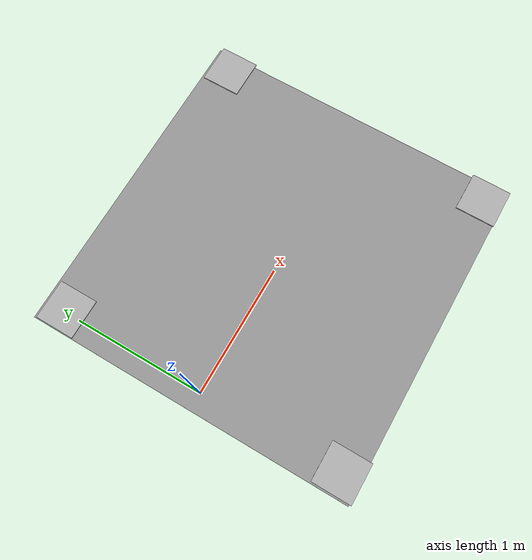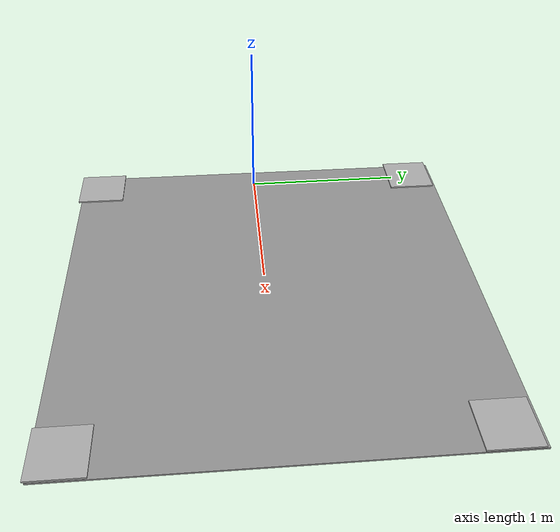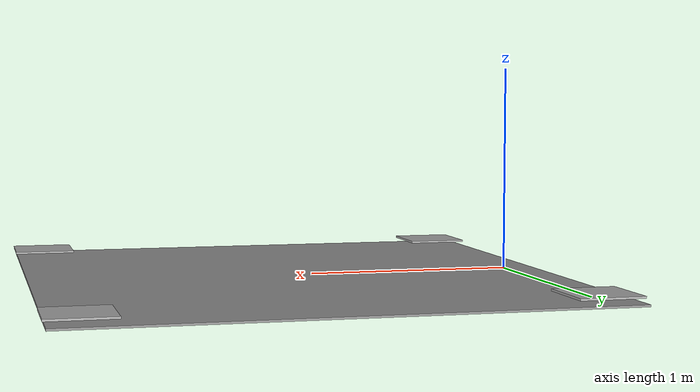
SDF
<?xml version='1.0'?>
<sdf version='1.6'>
  <model name='vr_env'>
    <link name='link'>
      <pose frame=''>1.11662 0.039296 0 0 -0 0</pose>
      <inertial>
        <mass>1</mass>
        <inertia>
          <ixx>0.166667</ixx>
          <ixy>0</ixy>
          <ixz>0</ixz>
          <iyy>0.166667</iyy>
          <iyz>0</iyz>
          <izz>0.166667</izz>
        </inertia>
        <pose frame=''>0 0 0 0 -0 0</pose>
      </inertial>
      <self_collide>0</self_collide>
      <kinematic>0</kinematic>
      <gravity>1</gravity>
      <visual name='visual'>
        <geometry>
          <box>
            <size>2.5 2.5 0.01</size>
          </box>
        </geometry>
        <material>
          <script>
            <name>Gazebo/Grey</name>
            <uri>file://media/materials/scripts/gazebo.material</uri>
          </script>
          <ambient>1 1 1 1</ambient>
          <diffuse>0.7 0.7 0.7 1</diffuse>
          <specular>0.01 0.01 0.01 1</specular>
          <emissive>0 0 0 1</emissive>
          <shader type='vertex'>
            <normal_map>__default__</normal_map>
          </shader>
        </material>
        <pose frame=''>0 0 0 0 -0 0</pose>
        <cast_shadows>1</cast_shadows>
        <transparency>0</transparency>
      </visual>
      <collision name='collision'>
        <laser_retro>0</laser_retro>
        <max_contacts>10</max_contacts>
        <pose frame=''>0 0 0 0 -0 0</pose>
        <geometry>
          <box>
            <size>2.5 2.5 0.01</size>
          </box>
        </geometry>
        <surface>
          <friction>
            <ode>
              <mu>1</mu>
              <mu2>1</mu2>
              <fdir1>0 0 0</fdir1>
              <slip1>0</slip1>
              <slip2>0</slip2>
            </ode>
            <torsional>
              <coefficient>1</coefficient>
              <patch_radius>0</patch_radius>
              <surface_radius>0</surface_radius>
              <use_patch_radius>1</use_patch_radius>
              <ode>
                <slip>0</slip>
              </ode>
            </torsional>
          </friction>
          <bounce>
            <restitution_coefficient>0</restitution_coefficient>
            <threshold>1e+06</threshold>
          </bounce>
          <contact>
            <collide_without_contact>0</collide_without_contact>
            <collide_without_contact_bitmask>1</collide_without_contact_bitmask>
            <collide_bitmask>1</collide_bitmask>
            <ode>
              <soft_cfm>0</soft_cfm>
              <soft_erp>0.2</soft_erp>
              <kp>1e+13</kp>
              <kd>1</kd>
              <max_vel>0.01</max_vel>
              <min_depth>0</min_depth>
            </ode>
            <bullet>
              <split_impulse>1</split_impulse>
              <split_impulse_penetration_threshold>-0.01</split_impulse_penetration_threshold>
              <soft_cfm>0</soft_cfm>
              <soft_erp>0.2</soft_erp>
              <kp>1e+13</kp>
              <kd>1</kd>
            </bullet>
          </contact>
        </surface>
      </collision>
    </link>
    <link name='link_tag1'>
      <pose frame=''>0.022967 1.11381 0.031996 0 -0 0</pose>
      <inertial>
        <mass>1</mass>
        <inertia>
          <ixx>0.166667</ixx>
          <ixy>0</ixy>
          <ixz>0</ixz>
          <iyy>0.166667</iyy>
          <iyz>0</iyz>
          <izz>0.166667</izz>
        </inertia>
        <pose frame=''>0 0 0 0 -0 0</pose>
      </inertial>
      <self_collide>0</self_collide>
      <kinematic>0</kinematic>
      <gravity>1</gravity>
      <visual name='visual'>
        <geometry>
          <box>
            <size>0.3 0.3 0.01</size>
          </box>
        </geometry>
        <material>
          <script>
            <name>vr_localization/tag1</name>
            <uri>file:///home/cm/Workspaces/VR_localization/src/vr_localization/gazebo/materials/tag1.material</uri>
          </script>
          <ambient>1 1 1 1</ambient>
          <diffuse>0.7 0.7 0.7 1</diffuse>
          <specular>0.01 0.01 0.01 1</specular>
          <emissive>0 0 0 1</emissive>
          <shader type='vertex'>
            <normal_map>__default__</normal_map>
          </shader>
        </material>
        <pose frame=''>0 0 0 0 -0 0</pose>
        <cast_shadows>1</cast_shadows>
        <transparency>0</transparency>
      </visual>
      <collision name='collision'>
        <laser_retro>0</laser_retro>
        <max_contacts>10</max_contacts>
        <pose frame=''>0 0 0 0 -0 0</pose>
        <geometry>
          <box>
            <size>0.3 0.3 0.01</size>
          </box>
        </geometry>
        <surface>
          <friction>
            <ode>
              <mu>1</mu>
              <mu2>1</mu2>
              <fdir1>0 0 0</fdir1>
              <slip1>0</slip1>
              <slip2>0</slip2>
            </ode>
            <torsional>
              <coefficient>1</coefficient>
              <patch_radius>0</patch_radius>
              <surface_radius>0</surface_radius>
              <use_patch_radius>1</use_patch_radius>
              <ode>
                <slip>0</slip>
              </ode>
            </torsional>
          </friction>
          <bounce>
            <restitution_coefficient>0</restitution_coefficient>
            <threshold>1e+06</threshold>
          </bounce>
          <contact>
            <collide_without_contact>0</collide_without_contact>
            <collide_without_contact_bitmask>1</collide_without_contact_bitmask>
            <collide_bitmask>1</collide_bitmask>
            <ode>
              <soft_cfm>0</soft_cfm>
              <soft_erp>0.2</soft_erp>
              <kp>1e+13</kp>
              <kd>1</kd>
              <max_vel>0.01</max_vel>
              <min_depth>0</min_depth>
            </ode>
            <bullet>
              <split_impulse>1</split_impulse>
              <split_impulse_penetration_threshold>-0.01</split_impulse_penetration_threshold>
              <soft_cfm>0</soft_cfm>
              <soft_erp>0.2</soft_erp>
              <kp>1e+13</kp>
              <kd>1</kd>
            </bullet>
          </contact>
        </surface>
      </collision>
    </link>
    <link name='link_tag2'>
      <pose frame=''>0.029284 -1.07214 0.031996 0 -0 0</pose>
      <inertial>
        <mass>1</mass>
        <inertia>
          <ixx>0.166667</ixx>
          <ixy>0</ixy>
          <ixz>0</ixz>
          <iyy>0.166667</iyy>
          <iyz>0</iyz>
          <izz>0.166667</izz>
        </inertia>
        <pose frame=''>0 0 0 0 -0 0</pose>
      </inertial>
      <self_collide>0</self_collide>
      <kinematic>0</kinematic>
      <visual name='visual'>
        <geometry>
          <box>
            <size>0.3 0.3 0.01</size>
          </box>
        </geometry>
        <material>
          <script>
            <name>vr_localization/tag2</name>
            <uri>file:///home/cm/Workspaces/VR_localization/src/vr_localization/gazebo/materials/tag2.material</uri>
          </script>
          <ambient>1 1 1 1</ambient>
          <diffuse>0.7 0.7 0.7 1</diffuse>
          <specular>0.01 0.01 0.01 1</specular>
          <emissive>0 0 0 1</emissive>
          <shader type='vertex'>
            <normal_map>__default__</normal_map>
          </shader>
        </material>
        <pose frame=''>0 0 0 0 -0 0</pose>
        <cast_shadows>1</cast_shadows>
        <transparency>0</transparency>
      </visual>
      <collision name='collision'>
        <laser_retro>0</laser_retro>
        <max_contacts>10</max_contacts>
        <pose frame=''>0 0 0 0 -0 0</pose>
        <geometry>
          <box>
            <size>0.3 0.3 0.01</size>
          </box>
        </geometry>
        <surface>
          <friction>
            <ode>
              <mu>1</mu>
              <mu2>1</mu2>
              <fdir1>0 0 0</fdir1>
              <slip1>0</slip1>
              <slip2>0</slip2>
            </ode>
            <torsional>
              <coefficient>1</coefficient>
              <patch_radius>0</patch_radius>
              <surface_radius>0</surface_radius>
              <use_patch_radius>1</use_patch_radius>
              <ode>
                <slip>0</slip>
              </ode>
            </torsional>
          </friction>
          <bounce>
            <restitution_coefficient>0</restitution_coefficient>
            <threshold>1e+06</threshold>
          </bounce>
          <contact>
            <collide_without_contact>0</collide_without_contact>
            <collide_without_contact_bitmask>1</collide_without_contact_bitmask>
            <collide_bitmask>1</collide_bitmask>
            <ode>
              <soft_cfm>0</soft_cfm>
              <soft_erp>0.2</soft_erp>
              <kp>1e+13</kp>
              <kd>1</kd>
              <max_vel>0.01</max_vel>
              <min_depth>0</min_depth>
            </ode>
            <bullet>
              <split_impulse>1</split_impulse>
              <split_impulse_penetration_threshold>-0.01</split_impulse_penetration_threshold>
              <soft_cfm>0</soft_cfm>
              <soft_erp>0.2</soft_erp>
              <kp>1e+13</kp>
              <kd>1</kd>
            </bullet>
          </contact>
        </surface>
      </collision>
    </link>
    <link name='link_tag3'>
      <pose frame=''>2.22958 1.11325 0.031996 0 -0 0</pose>
      <inertial>
        <mass>1</mass>
        <inertia>
          <ixx>0.166667</ixx>
          <ixy>0</ixy>
          <ixz>0</ixz>
          <iyy>0.166667</iyy>
          <iyz>0</iyz>
          <izz>0.166667</izz>
        </inertia>
        <pose frame=''>0 0 0 0 -0 0</pose>
      </inertial>
      <self_collide>0</self_collide>
      <kinematic>0</kinematic>
      <visual name='visual'>
        <geometry>
          <box>
            <size>0.3 0.3 0.01</size>
          </box>
        </geometry>
        <material>
          <script>
            <name>vr_localization/tag3</name>
            <uri>file:///home/cm/Workspaces/VR_localization/src/vr_localization/gazebo/materials/tag3.material</uri>
          </script>
          <ambient>1 1 1 1</ambient>
          <diffuse>0.7 0.7 0.7 1</diffuse>
          <specular>0.01 0.01 0.01 1</specular>
          <emissive>0 0 0 1</emissive>
          <shader type='vertex'>
            <normal_map>__default__</normal_map>
          </shader>
        </material>
        <pose frame=''>0 0 0 0 -0 0</pose>
        <cast_shadows>1</cast_shadows>
        <transparency>0</transparency>
      </visual>
      <collision name='collision'>
        <laser_retro>0</laser_retro>
        <max_contacts>10</max_contacts>
        <pose frame=''>0 0 0 0 -0 0</pose>
        <geometry>
          <box>
            <size>0.3 0.3 0.01</size>
          </box>
        </geometry>
        <surface>
          <friction>
            <ode>
              <mu>1</mu>
              <mu2>1</mu2>
              <fdir1>0 0 0</fdir1>
              <slip1>0</slip1>
              <slip2>0</slip2>
            </ode>
            <torsional>
              <coefficient>1</coefficient>
              <patch_radius>0</patch_radius>
              <surface_radius>0</surface_radius>
              <use_patch_radius>1</use_patch_radius>
              <ode>
                <slip>0</slip>
              </ode>
            </torsional>
          </friction>
          <bounce>
            <restitution_coefficient>0</restitution_coefficient>
            <threshold>1e+06</threshold>
          </bounce>
          <contact>
            <collide_without_contact>0</collide_without_contact>
            <collide_without_contact_bitmask>1</collide_without_contact_bitmask>
            <collide_bitmask>1</collide_bitmask>
            <ode>
              <soft_cfm>0</soft_cfm>
              <soft_erp>0.2</soft_erp>
              <kp>1e+13</kp>
              <kd>1</kd>
              <max_vel>0.01</max_vel>
              <min_depth>0</min_depth>
            </ode>
            <bullet>
              <split_impulse>1</split_impulse>
              <split_impulse_penetration_threshold>-0.01</split_impulse_penetration_threshold>
              <soft_cfm>0</soft_cfm>
              <soft_erp>0.2</soft_erp>
              <kp>1e+13</kp>
              <kd>1</kd>
            </bullet>
          </contact>
        </surface>
      </collision>
    </link>
    <link name='link_tag4'>
      <pose frame=''>2.22743 -1.06576 0.031996 0 -0 0</pose>
      <inertial>
        <mass>1</mass>
        <inertia>
          <ixx>0.166667</ixx>
          <ixy>0</ixy>
          <ixz>0</ixz>
          <iyy>0.166667</iyy>
          <iyz>0</iyz>
          <izz>0.166667</izz>
        </inertia>
        <pose frame=''>0 0 0 0 -0 0</pose>
      </inertial>
      <self_collide>0</self_collide>
      <kinematic>0</kinematic>
      <gravity>1</gravity>
      <visual name='visual'>
        <geometry>
          <box>
            <size>0.3 0.3 0.01</size>
          </box>
        </geometry>
        <material>
          <script>
            <name>vr_localization/tag4</name>
            <uri>file:///home/cm/Workspaces/VR_localization/src/vr_localization/gazebo/materials/tag4.material</uri>
          </script>
          <ambient>1 1 1 1</ambient>
          <diffuse>0.7 0.7 0.7 1</diffuse>
          <specular>0.01 0.01 0.01 1</specular>
          <emissive>0 0 0 1</emissive>
          <shader type='vertex'>
            <normal_map>__default__</normal_map>
          </shader>
        </material>
        <pose frame=''>0 0 0 0 -0 0</pose>
        <cast_shadows>1</cast_shadows>
        <transparency>0</transparency>
      </visual>
      <collision name='collision'>
        <laser_retro>0</laser_retro>
        <max_contacts>10</max_contacts>
        <pose frame=''>0 0 0 0 -0 0</pose>
        <geometry>
          <box>
            <size>0.3 0.3 0.01</size>
          </box>
        </geometry>
        <surface>
          <friction>
            <ode>
              <mu>1</mu>
              <mu2>1</mu2>
              <fdir1>0 0 0</fdir1>
              <slip1>0</slip1>
              <slip2>0</slip2>
            </ode>
            <torsional>
              <coefficient>1</coefficient>
              <patch_radius>0</patch_radius>
              <surface_radius>0</surface_radius>
              <use_patch_radius>1</use_patch_radius>
              <ode>
                <slip>0</slip>
              </ode>
            </torsional>
          </friction>
          <bounce>
            <restitution_coefficient>0</restitution_coefficient>
            <threshold>1e+06</threshold>
          </bounce>
          <contact>
            <collide_without_contact>0</collide_without_contact>
            <collide_without_contact_bitmask>1</collide_without_contact_bitmask>
            <collide_bitmask>1</collide_bitmask>
            <ode>
              <soft_cfm>0</soft_cfm>
              <soft_erp>0.2</soft_erp>
              <kp>1e+13</kp>
              <kd>1</kd>
              <max_vel>0.01</max_vel>
              <min_depth>0</min_depth>
            </ode>
            <bullet>
              <split_impulse>1</split_impulse>
              <split_impulse_penetration_threshold>-0.01</split_impulse_penetration_threshold>
              <soft_cfm>0</soft_cfm>
              <soft_erp>0.2</soft_erp>
              <kp>1e+13</kp>
              <kd>1</kd>
            </bullet>
          </contact>
        </surface>
      </collision>
    </link>
    <joint name='link_JOINT_0' type='fixed'>
      <parent>link</parent>
      <child>link_tag1</child>
      <pose frame=''>0 0 0 0 -0 0</pose>
      <physics>
        <ode>
          <limit>
            <cfm>0</cfm>
            <erp>0.2</erp>
          </limit>
          <suspension>
            <cfm>0</cfm>
            <erp>0.2</erp>
          </suspension>
        </ode>
      </physics>
    </joint>
    <joint name='link_JOINT_1' type='fixed'>
      <parent>link</parent>
      <child>link_tag2</child>
      <pose frame=''>0 0 0 0 -0 0</pose>
      <physics>
        <ode>
          <limit>
            <cfm>0</cfm>
            <erp>0.2</erp>
          </limit>
          <suspension>
            <cfm>0</cfm>
            <erp>0.2</erp>
          </suspension>
        </ode>
      </physics>
    </joint>
    <joint name='link_JOINT_2' type='fixed'>
      <parent>link</parent>
      <child>link_tag3</child>
      <pose frame=''>0 0 0 0 -0 0</pose>
      <physics>
        <ode>
          <limit>
            <cfm>0</cfm>
            <erp>0.2</erp>
          </limit>
          <suspension>
            <cfm>0</cfm>
            <erp>0.2</erp>
          </suspension>
        </ode>
      </physics>
    </joint>
    <joint name='link_JOINT_3' type='fixed'>
      <parent>link</parent>
      <child>link_tag4</child>
      <pose frame=''>0 0 0 0 -0 0</pose>
      <physics>
        <ode>
          <limit>
            <cfm>0</cfm>
            <erp>0.2</erp>
          </limit>
          <suspension>
            <cfm>0</cfm>
            <erp>0.2</erp>
          </suspension>
        </ode>
      </physics>
    </joint>
    <static>0</static>
    <allow_auto_disable>1</allow_auto_disable>
  </model>
</sdf>
